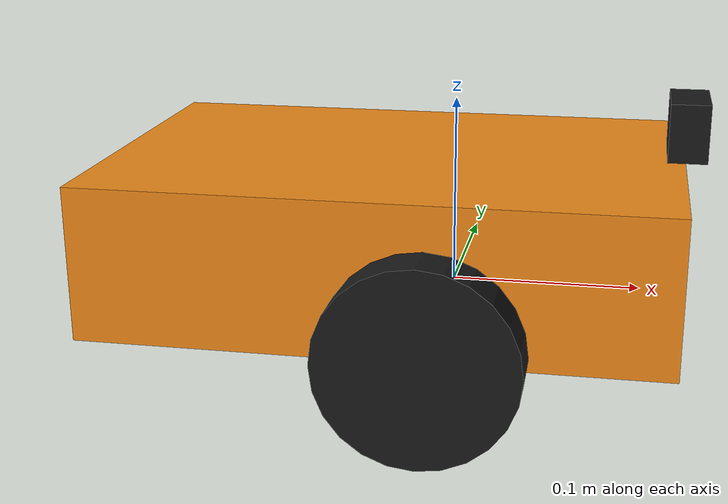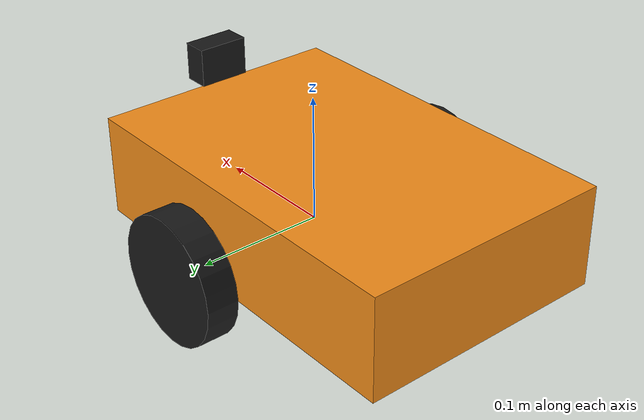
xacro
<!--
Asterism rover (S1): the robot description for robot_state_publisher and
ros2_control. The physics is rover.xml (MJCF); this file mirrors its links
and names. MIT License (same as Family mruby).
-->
<?xml version="1.0"?>
<robot xmlns:xacro="http://www.ros.org/wiki/xacro" name="asterism_rover">

  <xacro:arg name="headless" default="true"/>
  <xacro:arg name="model_dir" default="/asterism_rover/model"/>

  <xacro:property name="wheel_radius" value="0.05"/>
  <xacro:property name="wheel_width" value="0.025"/>
  <xacro:property name="wheel_y" value="0.12"/>

  <material name="orange"><color rgba="0.95 0.55 0.10 1"/></material>
  <material name="black"><color rgba="0.1 0.1 0.1 1"/></material>

  <link name="base_link">
    <visual>
      <origin xyz="-0.03 0 0.03"/>
      <geometry><box size="0.30 0.20 0.08"/></geometry>
      <material name="orange"/>
    </visual>
    <!-- No inertial here: the physics is rover.xml's, and KDL refuses an
         inertia on the root link. -->
  </link>

  <xacro:macro name="wheel" params="side y">
    <link name="${side}_wheel_link">
      <visual>
        <origin rpy="${pi/2} 0 0"/>
        <geometry><cylinder radius="${wheel_radius}" length="${wheel_width}"/></geometry>
        <material name="black"/>
      </visual>
      <inertial>
        <mass value="0.2"/>
        <inertia ixx="0.000135" ixy="0" ixz="0" iyy="0.00025" iyz="0" izz="0.000135"/>
      </inertial>
    </link>
    <joint name="${side}_wheel_joint" type="continuous">
      <parent link="base_link"/>
      <child link="${side}_wheel_link"/>
      <origin xyz="0 ${y} 0"/>
      <axis xyz="0 1 0"/>
    </joint>
  </xacro:macro>
  <xacro:wheel side="left" y="${wheel_y}"/>
  <xacro:wheel side="right" y="${-wheel_y}"/>

  <link name="caster_link">
    <visual><geometry><sphere radius="0.02"/></geometry><material name="black"/></visual>
  </link>
  <joint name="caster_joint" type="fixed">
    <parent link="base_link"/>
    <child link="caster_link"/>
    <origin xyz="-0.13 0 -0.03"/>
  </joint>

  <link name="imu_link"/>
  <joint name="imu_joint" type="fixed">
    <parent link="base_link"/>
    <child link="imu_link"/>
    <origin xyz="0 0 0.05"/>
  </joint>

  <!-- camera_link: x forward (ROS body convention). camera_optical_frame:
       z forward, x right, y down (the frame of the published image). -->
  <link name="camera_link">
    <visual><geometry><box size="0.02 0.04 0.03"/></geometry><material name="black"/></visual>
  </link>
  <joint name="camera_joint" type="fixed">
    <parent link="base_link"/>
    <child link="camera_link"/>
    <origin xyz="0.12 0 0.09"/>
  </joint>
  <link name="camera_optical_frame"/>
  <joint name="camera_optical_joint" type="fixed">
    <parent link="camera_link"/>
    <child link="camera_optical_frame"/>
    <origin xyz="0.011 0 0" rpy="${-pi/2} 0 ${-pi/2}"/>
  </joint>

  <ros2_control name="MujocoSystem" type="system">
    <hardware>
      <plugin>mujoco_ros2_control/MujocoSystemInterface</plugin>
      <param name="mujoco_model">$(arg model_dir)/scene.xml</param>
      <param name="headless">$(arg headless)</param>
      <!-- Ground truth for checking the wheel odometry: the free joint's
           pose and twist as nav_msgs/Odometry. -->
      <param name="odom_free_joint_name">floating_base_joint</param>
      <param name="odom_topic">/ground_truth/odom</param>
    </hardware>
    <joint name="left_wheel_joint">
      <command_interface name="velocity"/>
      <state_interface name="position"/>
      <state_interface name="velocity"/>
    </joint>
    <joint name="right_wheel_joint">
      <command_interface name="velocity"/>
      <state_interface name="position"/>
      <state_interface name="velocity"/>
    </joint>
    <sensor name="imu_sensor">
      <param name="mujoco_type">imu</param>
      <param name="mujoco_sensor_name">imu_sensor</param>
      <state_interface name="orientation.x"/>
      <state_interface name="orientation.y"/>
      <state_interface name="orientation.z"/>
      <state_interface name="orientation.w"/>
      <state_interface name="angular_velocity.x"/>
      <state_interface name="angular_velocity.y"/>
      <state_interface name="angular_velocity.z"/>
      <state_interface name="linear_acceleration.x"/>
      <state_interface name="linear_acceleration.y"/>
      <state_interface name="linear_acceleration.z"/>
    </sensor>
  </ros2_control>

</robot>
